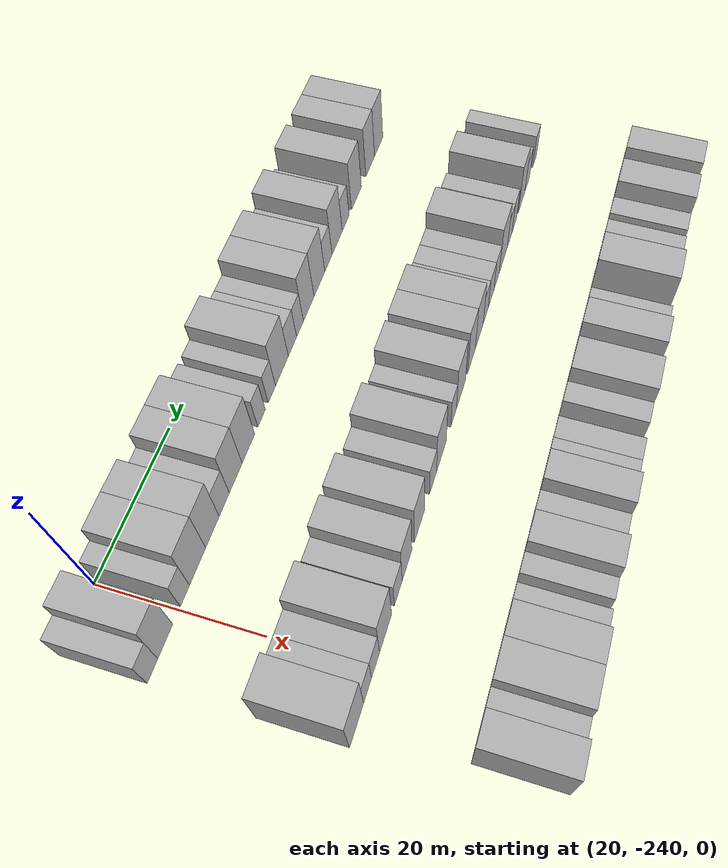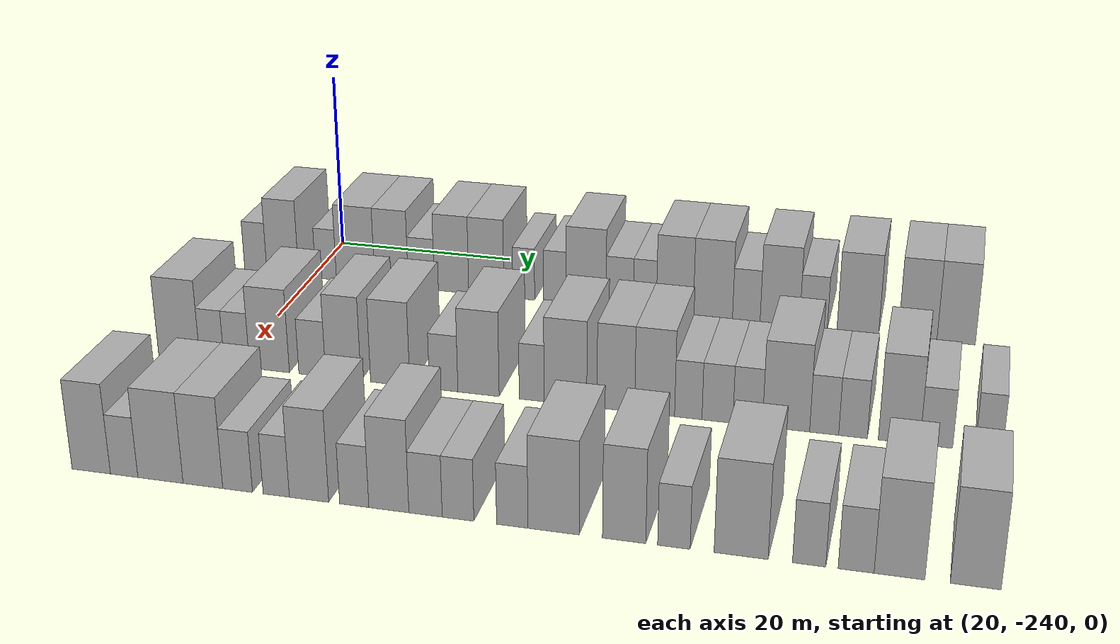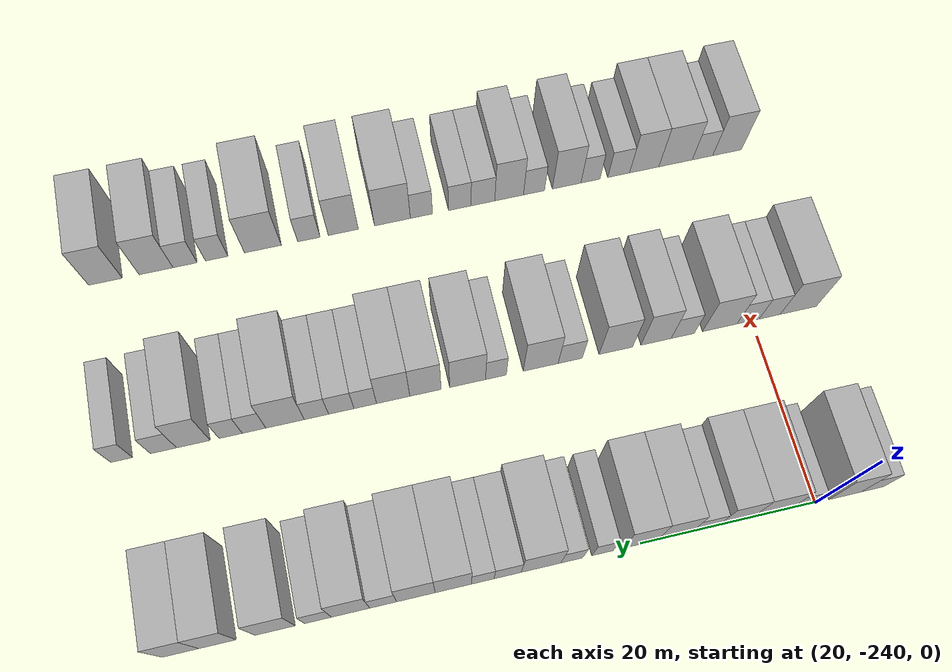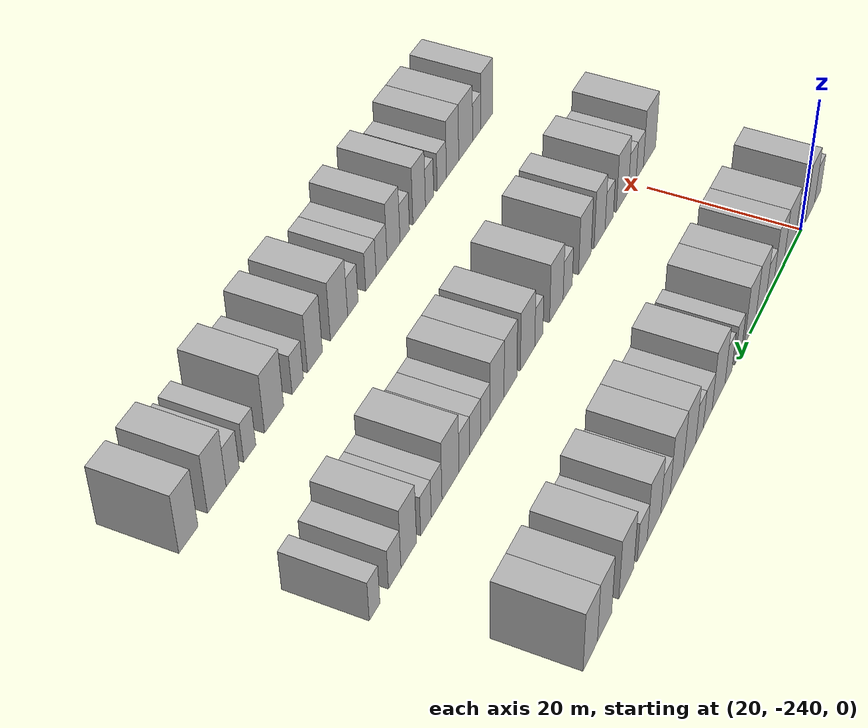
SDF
<sdf version="1.6">
 <world name="default">
  <model name="building_1">
   <static>1</static>
   <pose>25.0000 -246.6823 0 0.000000 0.000000 0.000000</pose>
   <link name="link">
    <pose>0 0 3.00 0 0 0</pose>
    <collision name="collision"><geometry><box><size>10.0000 2.6353 6.0000</size></box></geometry></collision>
    <visual name="visual">
     <cast_shadows>0</cast_shadows>
     <geometry><box><size>10.0000 2.6353 6.0000</size></box></geometry>
     <material>
      <script>
       <uri>model://HANNAS_wall/materials/scripts</uri>
       <uri>model://HANNAS_wall/materials/textures</uri>
       <name>vrc/HANNAS_wall</name>
      </script>
     </material>
    </visual>
   </link>
  </model>
  <model name="building_2">
   <static>1</static>
   <pose>25.0000 -243.4748 0 0.000000 0.000000 0.000000</pose>
   <link name="link">
    <pose>0 0 4.50 0 0 0</pose>
    <collision name="collision"><geometry><box><size>10.0000 3.7796 9.0000</size></box></geometry></collision>
    <visual name="visual">
     <cast_shadows>0</cast_shadows>
     <geometry><box><size>10.0000 3.7796 9.0000</size></box></geometry>
     <material>
      <script>
       <uri>model://HANNAS_wall/materials/scripts</uri>
       <uri>model://HANNAS_wall/materials/textures</uri>
       <name>vrc/HANNAS_wall</name>
      </script>
     </material>
    </visual>
   </link>
  </model>
  <model name="building_3">
   <static>1</static>
   <pose>25.0000 -238.3669 0 0.000000 0.000000 0.000000</pose>
   <link name="link">
    <pose>0 0 3.00 0 0 0</pose>
    <collision name="collision"><geometry><box><size>10.0000 2.4362 6.0000</size></box></geometry></collision>
    <visual name="visual">
     <cast_shadows>0</cast_shadows>
     <geometry><box><size>10.0000 2.4362 6.0000</size></box></geometry>
     <material>
      <script>
       <uri>model://HANNAS_wall/materials/scripts</uri>
       <uri>model://HANNAS_wall/materials/textures</uri>
       <name>vrc/HANNAS_wall</name>
      </script>
     </material>
    </visual>
   </link>
  </model>
  <model name="building_4">
   <static>1</static>
   <pose>25.0000 -234.9206 0 0.000000 0.000000 0.000000</pose>
   <link name="link">
    <pose>0 0 4.50 0 0 0</pose>
    <collision name="collision"><geometry><box><size>10.0000 4.4564 9.0000</size></box></geometry></collision>
    <visual name="visual">
     <cast_shadows>0</cast_shadows>
     <geometry><box><size>10.0000 4.4564 9.0000</size></box></geometry>
     <material>
      <script>
       <uri>model://HANNAS_wall/materials/scripts</uri>
       <uri>model://HANNAS_wall/materials/textures</uri>
       <name>vrc/HANNAS_wall</name>
      </script>
     </material>
    </visual>
   </link>
  </model>
  <model name="building_5">
   <static>1</static>
   <pose>25.0000 -230.7517 0 0.000000 0.000000 0.000000</pose>
   <link name="link">
    <pose>0 0 4.50 0 0 0</pose>
    <collision name="collision"><geometry><box><size>10.0000 3.8816 9.0000</size></box></geometry></collision>
    <visual name="visual">
     <cast_shadows>0</cast_shadows>
     <geometry><box><size>10.0000 3.8816 9.0000</size></box></geometry>
     <material>
      <script>
       <uri>model://HANNAS_wall/materials/scripts</uri>
       <uri>model://HANNAS_wall/materials/textures</uri>
       <name>vrc/HANNAS_wall</name>
      </script>
     </material>
    </visual>
   </link>
  </model>
  <model name="building_6">
   <static>1</static>
   <pose>25.0000 -227.3172 0 0.000000 0.000000 0.000000</pose>
   <link name="link">
    <pose>0 0 3.00 0 0 0</pose>
    <collision name="collision"><geometry><box><size>10.0000 2.9874 6.0000</size></box></geometry></collision>
    <visual name="visual">
     <cast_shadows>0</cast_shadows>
     <geometry><box><size>10.0000 2.9874 6.0000</size></box></geometry>
     <material>
      <script>
       <uri>model://HANNAS_wall/materials/scripts</uri>
       <uri>model://HANNAS_wall/materials/textures</uri>
       <name>vrc/HANNAS_wall</name>
      </script>
     </material>
    </visual>
   </link>
  </model>
  <model name="building_7">
   <static>1</static>
   <pose>25.0000 -223.8692 0 0.000000 0.000000 0.000000</pose>
   <link name="link">
    <pose>0 0 4.50 0 0 0</pose>
    <collision name="collision"><geometry><box><size>10.0000 3.9086 9.0000</size></box></geometry></collision>
    <visual name="visual">
     <cast_shadows>0</cast_shadows>
     <geometry><box><size>10.0000 3.9086 9.0000</size></box></geometry>
     <material>
      <script>
       <uri>model://HANNAS_wall/materials/scripts</uri>
       <uri>model://HANNAS_wall/materials/textures</uri>
       <name>vrc/HANNAS_wall</name>
      </script>
     </material>
    </visual>
   </link>
  </model>
  <model name="building_8">
   <static>1</static>
   <pose>25.0000 -219.9311 0 0.000000 0.000000 0.000000</pose>
   <link name="link">
    <pose>0 0 4.50 0 0 0</pose>
    <collision name="collision"><geometry><box><size>10.0000 3.9676 9.0000</size></box></geometry></collision>
    <visual name="visual">
     <cast_shadows>0</cast_shadows>
     <geometry><box><size>10.0000 3.9676 9.0000</size></box></geometry>
     <material>
      <script>
       <uri>model://HANNAS_wall/materials/scripts</uri>
       <uri>model://HANNAS_wall/materials/textures</uri>
       <name>vrc/HANNAS_wall</name>
      </script>
     </material>
    </visual>
   </link>
  </model>
  <model name="building_9">
   <static>1</static>
   <pose>25.0000 -215.7314 0 0.000000 0.000000 0.000000</pose>
   <link name="link">
    <pose>0 0 3.00 0 0 0</pose>
    <collision name="collision"><geometry><box><size>10.0000 2.4318 6.0000</size></box></geometry></collision>
    <visual name="visual">
     <cast_shadows>0</cast_shadows>
     <geometry><box><size>10.0000 2.4318 6.0000</size></box></geometry>
     <material>
      <script>
       <uri>model://HANNAS_wall/materials/scripts</uri>
       <uri>model://HANNAS_wall/materials/textures</uri>
       <name>vrc/HANNAS_wall</name>
      </script>
     </material>
    </visual>
   </link>
  </model>
  <model name="building_10">
   <static>1</static>
   <pose>25.0000 -212.2890 0 0.000000 0.000000 0.000000</pose>
   <link name="link">
    <pose>0 0 3.00 0 0 0</pose>
    <collision name="collision"><geometry><box><size>10.0000 2.4529 6.0000</size></box></geometry></collision>
    <visual name="visual">
     <cast_shadows>0</cast_shadows>
     <geometry><box><size>10.0000 2.4529 6.0000</size></box></geometry>
     <material>
      <script>
       <uri>model://HANNAS_wall/materials/scripts</uri>
       <uri>model://HANNAS_wall/materials/textures</uri>
       <name>vrc/HANNAS_wall</name>
      </script>
     </material>
    </visual>
   </link>
  </model>
  <model name="building_11">
   <static>1</static>
   <pose>25.0000 -208.8492 0 0.000000 0.000000 0.000000</pose>
   <link name="link">
    <pose>0 0 4.50 0 0 0</pose>
    <collision name="collision"><geometry><box><size>10.0000 4.4268 9.0000</size></box></geometry></collision>
    <visual name="visual">
     <cast_shadows>0</cast_shadows>
     <geometry><box><size>10.0000 4.4268 9.0000</size></box></geometry>
     <material>
      <script>
       <uri>model://HANNAS_wall/materials/scripts</uri>
       <uri>model://HANNAS_wall/materials/textures</uri>
       <name>vrc/HANNAS_wall</name>
      </script>
     </material>
    </visual>
   </link>
  </model>
  <model name="building_12">
   <static>1</static>
   <pose>25.0000 -205.1444 0 0.000000 0.000000 0.000000</pose>
   <link name="link">
    <pose>0 0 3.00 0 0 0</pose>
    <collision name="collision"><geometry><box><size>10.0000 2.9828 6.0000</size></box></geometry></collision>
    <visual name="visual">
     <cast_shadows>0</cast_shadows>
     <geometry><box><size>10.0000 2.9828 6.0000</size></box></geometry>
     <material>
      <script>
       <uri>model://HANNAS_wall/materials/scripts</uri>
       <uri>model://HANNAS_wall/materials/textures</uri>
       <name>vrc/HANNAS_wall</name>
      </script>
     </material>
    </visual>
   </link>
  </model>
  <model name="building_13">
   <static>1</static>
   <pose>25.0000 -202.4101 0 0.000000 0.000000 0.000000</pose>
   <link name="link">
    <pose>0 0 3.00 0 0 0</pose>
    <collision name="collision"><geometry><box><size>10.0000 2.4857 6.0000</size></box></geometry></collision>
    <visual name="visual">
     <cast_shadows>0</cast_shadows>
     <geometry><box><size>10.0000 2.4857 6.0000</size></box></geometry>
     <material>
      <script>
       <uri>model://HANNAS_wall/materials/scripts</uri>
       <uri>model://HANNAS_wall/materials/textures</uri>
       <name>vrc/HANNAS_wall</name>
      </script>
     </material>
    </visual>
   </link>
  </model>
  <model name="building_14">
   <static>1</static>
   <pose>25.0000 -199.1796 0 0.000000 0.000000 0.000000</pose>
   <link name="link">
    <pose>0 0 4.50 0 0 0</pose>
    <collision name="collision"><geometry><box><size>10.0000 3.9754 9.0000</size></box></geometry></collision>
    <visual name="visual">
     <cast_shadows>0</cast_shadows>
     <geometry><box><size>10.0000 3.9754 9.0000</size></box></geometry>
     <material>
      <script>
       <uri>model://HANNAS_wall/materials/scripts</uri>
       <uri>model://HANNAS_wall/materials/textures</uri>
       <name>vrc/HANNAS_wall</name>
      </script>
     </material>
    </visual>
   </link>
  </model>
  <model name="building_15">
   <static>1</static>
   <pose>25.0000 -195.0991 0 0.000000 0.000000 0.000000</pose>
   <link name="link">
    <pose>0 0 4.50 0 0 0</pose>
    <collision name="collision"><geometry><box><size>10.0000 4.1856 9.0000</size></box></geometry></collision>
    <visual name="visual">
     <cast_shadows>0</cast_shadows>
     <geometry><box><size>10.0000 4.1856 9.0000</size></box></geometry>
     <material>
      <script>
       <uri>model://HANNAS_wall/materials/scripts</uri>
       <uri>model://HANNAS_wall/materials/textures</uri>
       <name>vrc/HANNAS_wall</name>
      </script>
     </material>
    </visual>
   </link>
  </model>
  <model name="building_16">
   <static>1</static>
   <pose>25.0000 -191.5469 0 0.000000 0.000000 0.000000</pose>
   <link name="link">
    <pose>0 0 3.00 0 0 0</pose>
    <collision name="collision"><geometry><box><size>10.0000 2.9188 6.0000</size></box></geometry></collision>
    <visual name="visual">
     <cast_shadows>0</cast_shadows>
     <geometry><box><size>10.0000 2.9188 6.0000</size></box></geometry>
     <material>
      <script>
       <uri>model://HANNAS_wall/materials/scripts</uri>
       <uri>model://HANNAS_wall/materials/textures</uri>
       <name>vrc/HANNAS_wall</name>
      </script>
     </material>
    </visual>
   </link>
  </model>
  <model name="building_17">
   <static>1</static>
   <pose>25.0000 -188.0178 0 0.000000 0.000000 0.000000</pose>
   <link name="link">
    <pose>0 0 4.50 0 0 0</pose>
    <collision name="collision"><geometry><box><size>10.0000 4.1394 9.0000</size></box></geometry></collision>
    <visual name="visual">
     <cast_shadows>0</cast_shadows>
     <geometry><box><size>10.0000 4.1394 9.0000</size></box></geometry>
     <material>
      <script>
       <uri>model://HANNAS_wall/materials/scripts</uri>
       <uri>model://HANNAS_wall/materials/textures</uri>
       <name>vrc/HANNAS_wall</name>
      </script>
     </material>
    </visual>
   </link>
  </model>
  <model name="building_18">
   <static>1</static>
   <pose>25.0000 -184.5007 0 0.000000 0.000000 0.000000</pose>
   <link name="link">
    <pose>0 0 3.00 0 0 0</pose>
    <collision name="collision"><geometry><box><size>10.0000 2.8948 6.0000</size></box></geometry></collision>
    <visual name="visual">
     <cast_shadows>0</cast_shadows>
     <geometry><box><size>10.0000 2.8948 6.0000</size></box></geometry>
     <material>
      <script>
       <uri>model://HANNAS_wall/materials/scripts</uri>
       <uri>model://HANNAS_wall/materials/textures</uri>
       <name>vrc/HANNAS_wall</name>
      </script>
     </material>
    </visual>
   </link>
  </model>
  <model name="building_19">
   <static>1</static>
   <pose>25.0000 -179.9044 0 0.000000 0.000000 0.000000</pose>
   <link name="link">
    <pose>0 0 4.50 0 0 0</pose>
    <collision name="collision"><geometry><box><size>10.0000 4.2978 9.0000</size></box></geometry></collision>
    <visual name="visual">
     <cast_shadows>0</cast_shadows>
     <geometry><box><size>10.0000 4.2978 9.0000</size></box></geometry>
     <material>
      <script>
       <uri>model://HANNAS_wall/materials/scripts</uri>
       <uri>model://HANNAS_wall/materials/textures</uri>
       <name>vrc/HANNAS_wall</name>
      </script>
     </material>
    </visual>
   </link>
  </model>
  <model name="building_20">
   <static>1</static>
   <pose>25.0000 -173.7915 0 0.000000 0.000000 0.000000</pose>
   <link name="link">
    <pose>0 0 4.50 0 0 0</pose>
    <collision name="collision"><geometry><box><size>10.0000 3.9280 9.0000</size></box></geometry></collision>
    <visual name="visual">
     <cast_shadows>0</cast_shadows>
     <geometry><box><size>10.0000 3.9280 9.0000</size></box></geometry>
     <material>
      <script>
       <uri>model://HANNAS_wall/materials/scripts</uri>
       <uri>model://HANNAS_wall/materials/textures</uri>
       <name>vrc/HANNAS_wall</name>
      </script>
     </material>
    </visual>
   </link>
  </model>
  <model name="building_21">
   <static>1</static>
   <pose>25.0000 -169.8937 0 0.000000 0.000000 0.000000</pose>
   <link name="link">
    <pose>0 0 4.50 0 0 0</pose>
    <collision name="collision"><geometry><box><size>10.0000 3.8677 9.0000</size></box></geometry></collision>
    <visual name="visual">
     <cast_shadows>0</cast_shadows>
     <geometry><box><size>10.0000 3.8677 9.0000</size></box></geometry>
     <material>
      <script>
       <uri>model://HANNAS_wall/materials/scripts</uri>
       <uri>model://HANNAS_wall/materials/textures</uri>
       <name>vrc/HANNAS_wall</name>
      </script>
     </material>
    </visual>
   </link>
  </model>
  <model name="building_119">
   <static>1</static>
   <pose>47.0000 -245.7677 0 0.000000 0.000000 0.000000</pose>
   <link name="link">
    <pose>0 0 4.50 0 0 0</pose>
    <collision name="collision"><geometry><box><size>10.0000 4.4645 9.0000</size></box></geometry></collision>
    <visual name="visual">
     <cast_shadows>0</cast_shadows>
     <geometry><box><size>10.0000 4.4645 9.0000</size></box></geometry>
     <material>
      <script>
       <uri>model://HANNAS_wall/materials/scripts</uri>
       <uri>model://HANNAS_wall/materials/textures</uri>
       <name>vrc/HANNAS_wall</name>
      </script>
     </material>
    </visual>
   </link>
  </model>
  <model name="building_120">
   <static>1</static>
   <pose>47.0000 -242.2309 0 0.000000 0.000000 0.000000</pose>
   <link name="link">
    <pose>0 0 3.00 0 0 0</pose>
    <collision name="collision"><geometry><box><size>10.0000 2.6091 6.0000</size></box></geometry></collision>
    <visual name="visual">
     <cast_shadows>0</cast_shadows>
     <geometry><box><size>10.0000 2.6091 6.0000</size></box></geometry>
     <material>
      <script>
       <uri>model://HANNAS_wall/materials/scripts</uri>
       <uri>model://HANNAS_wall/materials/textures</uri>
       <name>vrc/HANNAS_wall</name>
      </script>
     </material>
    </visual>
   </link>
  </model>
  <model name="building_121">
   <static>1</static>
   <pose>47.0000 -239.5658 0 0.000000 0.000000 0.000000</pose>
   <link name="link">
    <pose>0 0 3.00 0 0 0</pose>
    <collision name="collision"><geometry><box><size>10.0000 2.7212 6.0000</size></box></geometry></collision>
    <visual name="visual">
     <cast_shadows>0</cast_shadows>
     <geometry><box><size>10.0000 2.7212 6.0000</size></box></geometry>
     <material>
      <script>
       <uri>model://HANNAS_wall/materials/scripts</uri>
       <uri>model://HANNAS_wall/materials/textures</uri>
       <name>vrc/HANNAS_wall</name>
      </script>
     </material>
    </visual>
   </link>
  </model>
  <model name="building_122">
   <static>1</static>
   <pose>47.0000 -236.0998 0 0.000000 0.000000 0.000000</pose>
   <link name="link">
    <pose>0 0 4.50 0 0 0</pose>
    <collision name="collision"><geometry><box><size>10.0000 4.2108 9.0000</size></box></geometry></collision>
    <visual name="visual">
     <cast_shadows>0</cast_shadows>
     <geometry><box><size>10.0000 4.2108 9.0000</size></box></geometry>
     <material>
      <script>
       <uri>model://HANNAS_wall/materials/scripts</uri>
       <uri>model://HANNAS_wall/materials/textures</uri>
       <name>vrc/HANNAS_wall</name>
      </script>
     </material>
    </visual>
   </link>
  </model>
  <model name="building_123">
   <static>1</static>
   <pose>47.0000 -231.5869 0 0.000000 0.000000 0.000000</pose>
   <link name="link">
    <pose>0 0 3.00 0 0 0</pose>
    <collision name="collision"><geometry><box><size>10.0000 2.8149 6.0000</size></box></geometry></collision>
    <visual name="visual">
     <cast_shadows>0</cast_shadows>
     <geometry><box><size>10.0000 2.8149 6.0000</size></box></geometry>
     <material>
      <script>
       <uri>model://HANNAS_wall/materials/scripts</uri>
       <uri>model://HANNAS_wall/materials/textures</uri>
       <name>vrc/HANNAS_wall</name>
      </script>
     </material>
    </visual>
   </link>
  </model>
  <model name="building_124">
   <static>1</static>
   <pose>47.0000 -228.3459 0 0.000000 0.000000 0.000000</pose>
   <link name="link">
    <pose>0 0 4.50 0 0 0</pose>
    <collision name="collision"><geometry><box><size>10.0000 3.6670 9.0000</size></box></geometry></collision>
    <visual name="visual">
     <cast_shadows>0</cast_shadows>
     <geometry><box><size>10.0000 3.6670 9.0000</size></box></geometry>
     <material>
      <script>
       <uri>model://HANNAS_wall/materials/scripts</uri>
       <uri>model://HANNAS_wall/materials/textures</uri>
       <name>vrc/HANNAS_wall</name>
      </script>
     </material>
    </visual>
   </link>
  </model>
  <model name="building_125">
   <static>1</static>
   <pose>47.0000 -223.4941 0 0.000000 0.000000 0.000000</pose>
   <link name="link">
    <pose>0 0 4.50 0 0 0</pose>
    <collision name="collision"><geometry><box><size>10.0000 4.0366 9.0000</size></box></geometry></collision>
    <visual name="visual">
     <cast_shadows>0</cast_shadows>
     <geometry><box><size>10.0000 4.0366 9.0000</size></box></geometry>
     <material>
      <script>
       <uri>model://HANNAS_wall/materials/scripts</uri>
       <uri>model://HANNAS_wall/materials/textures</uri>
       <name>vrc/HANNAS_wall</name>
      </script>
     </material>
    </visual>
   </link>
  </model>
  <model name="building_126">
   <static>1</static>
   <pose>47.0000 -218.0312 0 0.000000 0.000000 0.000000</pose>
   <link name="link">
    <pose>0 0 3.00 0 0 0</pose>
    <collision name="collision"><geometry><box><size>10.0000 2.8892 6.0000</size></box></geometry></collision>
    <visual name="visual">
     <cast_shadows>0</cast_shadows>
     <geometry><box><size>10.0000 2.8892 6.0000</size></box></geometry>
     <material>
      <script>
       <uri>model://HANNAS_wall/materials/scripts</uri>
       <uri>model://HANNAS_wall/materials/textures</uri>
       <name>vrc/HANNAS_wall</name>
      </script>
     </material>
    </visual>
   </link>
  </model>
  <model name="building_127">
   <static>1</static>
   <pose>47.0000 -214.5091 0 0.000000 0.000000 0.000000</pose>
   <link name="link">
    <pose>0 0 4.50 0 0 0</pose>
    <collision name="collision"><geometry><box><size>10.0000 4.1549 9.0000</size></box></geometry></collision>
    <visual name="visual">
     <cast_shadows>0</cast_shadows>
     <geometry><box><size>10.0000 4.1549 9.0000</size></box></geometry>
     <material>
      <script>
       <uri>model://HANNAS_wall/materials/scripts</uri>
       <uri>model://HANNAS_wall/materials/textures</uri>
       <name>vrc/HANNAS_wall</name>
      </script>
     </material>
    </visual>
   </link>
  </model>
  <model name="building_128">
   <static>1</static>
   <pose>47.0000 -209.1983 0 0.000000 0.000000 0.000000</pose>
   <link name="link">
    <pose>0 0 3.00 0 0 0</pose>
    <collision name="collision"><geometry><box><size>10.0000 2.4667 6.0000</size></box></geometry></collision>
    <visual name="visual">
     <cast_shadows>0</cast_shadows>
     <geometry><box><size>10.0000 2.4667 6.0000</size></box></geometry>
     <material>
      <script>
       <uri>model://HANNAS_wall/materials/scripts</uri>
       <uri>model://HANNAS_wall/materials/textures</uri>
       <name>vrc/HANNAS_wall</name>
      </script>
     </material>
    </visual>
   </link>
  </model>
  <model name="building_129">
   <static>1</static>
   <pose>47.0000 -205.8632 0 0.000000 0.000000 0.000000</pose>
   <link name="link">
    <pose>0 0 4.50 0 0 0</pose>
    <collision name="collision"><geometry><box><size>10.0000 4.2034 9.0000</size></box></geometry></collision>
    <visual name="visual">
     <cast_shadows>0</cast_shadows>
     <geometry><box><size>10.0000 4.2034 9.0000</size></box></geometry>
     <material>
      <script>
       <uri>model://HANNAS_wall/materials/scripts</uri>
       <uri>model://HANNAS_wall/materials/textures</uri>
       <name>vrc/HANNAS_wall</name>
      </script>
     </material>
    </visual>
   </link>
  </model>
  <model name="building_130">
   <static>1</static>
   <pose>47.0000 -200.9301 0 0.000000 0.000000 0.000000</pose>
   <link name="link">
    <pose>0 0 4.50 0 0 0</pose>
    <collision name="collision"><geometry><box><size>10.0000 3.6627 9.0000</size></box></geometry></collision>
    <visual name="visual">
     <cast_shadows>0</cast_shadows>
     <geometry><box><size>10.0000 3.6627 9.0000</size></box></geometry>
     <material>
      <script>
       <uri>model://HANNAS_wall/materials/scripts</uri>
       <uri>model://HANNAS_wall/materials/textures</uri>
       <name>vrc/HANNAS_wall</name>
      </script>
     </material>
    </visual>
   </link>
  </model>
  <model name="building_131">
   <static>1</static>
   <pose>47.0000 -197.1742 0 0.000000 0.000000 0.000000</pose>
   <link name="link">
    <pose>0 0 4.50 0 0 0</pose>
    <collision name="collision"><geometry><box><size>10.0000 3.8491 9.0000</size></box></geometry></collision>
    <visual name="visual">
     <cast_shadows>0</cast_shadows>
     <geometry><box><size>10.0000 3.8491 9.0000</size></box></geometry>
     <material>
      <script>
       <uri>model://HANNAS_wall/materials/scripts</uri>
       <uri>model://HANNAS_wall/materials/textures</uri>
       <name>vrc/HANNAS_wall</name>
      </script>
     </material>
    </visual>
   </link>
  </model>
  <model name="building_132">
   <static>1</static>
   <pose>47.0000 -193.9425 0 0.000000 0.000000 0.000000</pose>
   <link name="link">
    <pose>0 0 3.00 0 0 0</pose>
    <collision name="collision"><geometry><box><size>10.0000 2.6144 6.0000</size></box></geometry></collision>
    <visual name="visual">
     <cast_shadows>0</cast_shadows>
     <geometry><box><size>10.0000 2.6144 6.0000</size></box></geometry>
     <material>
      <script>
       <uri>model://HANNAS_wall/materials/scripts</uri>
       <uri>model://HANNAS_wall/materials/textures</uri>
       <name>vrc/HANNAS_wall</name>
      </script>
     </material>
    </visual>
   </link>
  </model>
  <model name="building_133">
   <static>1</static>
   <pose>47.0000 -191.1678 0 0.000000 0.000000 0.000000</pose>
   <link name="link">
    <pose>0 0 3.00 0 0 0</pose>
    <collision name="collision"><geometry><box><size>10.0000 2.9351 6.0000</size></box></geometry></collision>
    <visual name="visual">
     <cast_shadows>0</cast_shadows>
     <geometry><box><size>10.0000 2.9351 6.0000</size></box></geometry>
     <material>
      <script>
       <uri>model://HANNAS_wall/materials/scripts</uri>
       <uri>model://HANNAS_wall/materials/textures</uri>
       <name>vrc/HANNAS_wall</name>
      </script>
     </material>
    </visual>
   </link>
  </model>
  <model name="building_134">
   <static>1</static>
   <pose>47.0000 -188.3075 0 0.000000 0.000000 0.000000</pose>
   <link name="link">
    <pose>0 0 3.00 0 0 0</pose>
    <collision name="collision"><geometry><box><size>10.0000 2.7853 6.0000</size></box></geometry></collision>
    <visual name="visual">
     <cast_shadows>0</cast_shadows>
     <geometry><box><size>10.0000 2.7853 6.0000</size></box></geometry>
     <material>
      <script>
       <uri>model://HANNAS_wall/materials/scripts</uri>
       <uri>model://HANNAS_wall/materials/textures</uri>
       <name>vrc/HANNAS_wall</name>
      </script>
     </material>
    </visual>
   </link>
  </model>
  <model name="building_135">
   <static>1</static>
   <pose>47.0000 -184.7114 0 0.000000 0.000000 0.000000</pose>
   <link name="link">
    <pose>0 0 4.50 0 0 0</pose>
    <collision name="collision"><geometry><box><size>10.0000 4.4069 9.0000</size></box></geometry></collision>
    <visual name="visual">
     <cast_shadows>0</cast_shadows>
     <geometry><box><size>10.0000 4.4069 9.0000</size></box></geometry>
     <material>
      <script>
       <uri>model://HANNAS_wall/materials/scripts</uri>
       <uri>model://HANNAS_wall/materials/textures</uri>
       <name>vrc/HANNAS_wall</name>
      </script>
     </material>
    </visual>
   </link>
  </model>
  <model name="building_136">
   <static>1</static>
   <pose>47.0000 -181.1659 0 0.000000 0.000000 0.000000</pose>
   <link name="link">
    <pose>0 0 3.00 0 0 0</pose>
    <collision name="collision"><geometry><box><size>10.0000 2.6843 6.0000</size></box></geometry></collision>
    <visual name="visual">
     <cast_shadows>0</cast_shadows>
     <geometry><box><size>10.0000 2.6843 6.0000</size></box></geometry>
     <material>
      <script>
       <uri>model://HANNAS_wall/materials/scripts</uri>
       <uri>model://HANNAS_wall/materials/textures</uri>
       <name>vrc/HANNAS_wall</name>
      </script>
     </material>
    </visual>
   </link>
  </model>
  <model name="building_137">
   <static>1</static>
   <pose>47.0000 -178.5065 0 0.000000 0.000000 0.000000</pose>
   <link name="link">
    <pose>0 0 3.00 0 0 0</pose>
    <collision name="collision"><geometry><box><size>10.0000 2.6346 6.0000</size></box></geometry></collision>
    <visual name="visual">
     <cast_shadows>0</cast_shadows>
     <geometry><box><size>10.0000 2.6346 6.0000</size></box></geometry>
     <material>
      <script>
       <uri>model://HANNAS_wall/materials/scripts</uri>
       <uri>model://HANNAS_wall/materials/textures</uri>
       <name>vrc/HANNAS_wall</name>
      </script>
     </material>
    </visual>
   </link>
  </model>
  <model name="building_138">
   <static>1</static>
   <pose>47.0000 -174.2958 0 0.000000 0.000000 0.000000</pose>
   <link name="link">
    <pose>0 0 4.50 0 0 0</pose>
    <collision name="collision"><geometry><box><size>10.0000 3.7867 9.0000</size></box></geometry></collision>
    <visual name="visual">
     <cast_shadows>0</cast_shadows>
     <geometry><box><size>10.0000 3.7867 9.0000</size></box></geometry>
     <material>
      <script>
       <uri>model://HANNAS_wall/materials/scripts</uri>
       <uri>model://HANNAS_wall/materials/textures</uri>
       <name>vrc/HANNAS_wall</name>
      </script>
     </material>
    </visual>
   </link>
  </model>
  <model name="building_139">
   <static>1</static>
   <pose>47.0000 -170.9310 0 0.000000 0.000000 0.000000</pose>
   <link name="link">
    <pose>0 0 3.00 0 0 0</pose>
    <collision name="collision"><geometry><box><size>10.0000 2.9429 6.0000</size></box></geometry></collision>
    <visual name="visual">
     <cast_shadows>0</cast_shadows>
     <geometry><box><size>10.0000 2.9429 6.0000</size></box></geometry>
     <material>
      <script>
       <uri>model://HANNAS_wall/materials/scripts</uri>
       <uri>model://HANNAS_wall/materials/textures</uri>
       <name>vrc/HANNAS_wall</name>
      </script>
     </material>
    </visual>
   </link>
  </model>
  <model name="building_140">
   <static>1</static>
   <pose>47.0000 -166.2429 0 0.000000 0.000000 0.000000</pose>
   <link name="link">
    <pose>0 0 3.00 0 0 0</pose>
    <collision name="collision"><geometry><box><size>10.0000 2.4333 6.0000</size></box></geometry></collision>
    <visual name="visual">
     <cast_shadows>0</cast_shadows>
     <geometry><box><size>10.0000 2.4333 6.0000</size></box></geometry>
     <material>
      <script>
       <uri>model://HANNAS_wall/materials/scripts</uri>
       <uri>model://HANNAS_wall/materials/textures</uri>
       <name>vrc/HANNAS_wall</name>
      </script>
     </material>
    </visual>
   </link>
  </model>
  <model name="building_250">
   <static>1</static>
   <pose>69.0000 -244.1309 0 0.000000 0.000000 0.000000</pose>
   <link name="link">
    <pose>0 0 4.50 0 0 0</pose>
    <collision name="collision"><geometry><box><size>10.0000 3.7382 9.0000</size></box></geometry></collision>
    <visual name="visual">
     <cast_shadows>0</cast_shadows>
     <geometry><box><size>10.0000 3.7382 9.0000</size></box></geometry>
     <material>
      <script>
       <uri>model://HANNAS_wall/materials/scripts</uri>
       <uri>model://HANNAS_wall/materials/textures</uri>
       <name>vrc/HANNAS_wall</name>
      </script>
     </material>
    </visual>
   </link>
  </model>
  <model name="building_251">
   <static>1</static>
   <pose>69.0000 -240.9376 0 0.000000 0.000000 0.000000</pose>
   <link name="link">
    <pose>0 0 3.00 0 0 0</pose>
    <collision name="collision"><geometry><box><size>10.0000 2.6484 6.0000</size></box></geometry></collision>
    <visual name="visual">
     <cast_shadows>0</cast_shadows>
     <geometry><box><size>10.0000 2.6484 6.0000</size></box></geometry>
     <material>
      <script>
       <uri>model://HANNAS_wall/materials/scripts</uri>
       <uri>model://HANNAS_wall/materials/textures</uri>
       <name>vrc/HANNAS_wall</name>
      </script>
     </material>
    </visual>
   </link>
  </model>
  <model name="building_252">
   <static>1</static>
   <pose>69.0000 -237.4472 0 0.000000 0.000000 0.000000</pose>
   <link name="link">
    <pose>0 0 4.50 0 0 0</pose>
    <collision name="collision"><geometry><box><size>10.0000 4.3323 9.0000</size></box></geometry></collision>
    <visual name="visual">
     <cast_shadows>0</cast_shadows>
     <geometry><box><size>10.0000 4.3323 9.0000</size></box></geometry>
     <material>
      <script>
       <uri>model://HANNAS_wall/materials/scripts</uri>
       <uri>model://HANNAS_wall/materials/textures</uri>
       <name>vrc/HANNAS_wall</name>
      </script>
     </material>
    </visual>
   </link>
  </model>
  <model name="building_253">
   <static>1</static>
   <pose>69.0000 -233.4022 0 0.000000 0.000000 0.000000</pose>
   <link name="link">
    <pose>0 0 4.50 0 0 0</pose>
    <collision name="collision"><geometry><box><size>10.0000 3.7578 9.0000</size></box></geometry></collision>
    <visual name="visual">
     <cast_shadows>0</cast_shadows>
     <geometry><box><size>10.0000 3.7578 9.0000</size></box></geometry>
     <material>
      <script>
       <uri>model://HANNAS_wall/materials/scripts</uri>
       <uri>model://HANNAS_wall/materials/textures</uri>
       <name>vrc/HANNAS_wall</name>
      </script>
     </material>
    </visual>
   </link>
  </model>
  <model name="building_254">
   <static>1</static>
   <pose>69.0000 -230.1285 0 0.000000 0.000000 0.000000</pose>
   <link name="link">
    <pose>0 0 3.00 0 0 0</pose>
    <collision name="collision"><geometry><box><size>10.0000 2.7895 6.0000</size></box></geometry></collision>
    <visual name="visual">
     <cast_shadows>0</cast_shadows>
     <geometry><box><size>10.0000 2.7895 6.0000</size></box></geometry>
     <material>
      <script>
       <uri>model://HANNAS_wall/materials/scripts</uri>
       <uri>model://HANNAS_wall/materials/textures</uri>
       <name>vrc/HANNAS_wall</name>
      </script>
     </material>
    </visual>
   </link>
  </model>
  <model name="building_255">
   <static>1</static>
   <pose>69.0000 -226.5180 0 0.000000 0.000000 0.000000</pose>
   <link name="link">
    <pose>0 0 3.00 0 0 0</pose>
    <collision name="collision"><geometry><box><size>10.0000 2.4316 6.0000</size></box></geometry></collision>
    <visual name="visual">
     <cast_shadows>0</cast_shadows>
     <geometry><box><size>10.0000 2.4316 6.0000</size></box></geometry>
     <material>
      <script>
       <uri>model://HANNAS_wall/materials/scripts</uri>
       <uri>model://HANNAS_wall/materials/textures</uri>
       <name>vrc/HANNAS_wall</name>
      </script>
     </material>
    </visual>
   </link>
  </model>
  <model name="building_256">
   <static>1</static>
   <pose>69.0000 -223.4877 0 0.000000 0.000000 0.000000</pose>
   <link name="link">
    <pose>0 0 4.50 0 0 0</pose>
    <collision name="collision"><geometry><box><size>10.0000 3.6289 9.0000</size></box></geometry></collision>
    <visual name="visual">
     <cast_shadows>0</cast_shadows>
     <geometry><box><size>10.0000 3.6289 9.0000</size></box></geometry>
     <material>
      <script>
       <uri>model://HANNAS_wall/materials/scripts</uri>
       <uri>model://HANNAS_wall/materials/textures</uri>
       <name>vrc/HANNAS_wall</name>
      </script>
     </material>
    </visual>
   </link>
  </model>
  <model name="building_257">
   <static>1</static>
   <pose>69.0000 -219.3445 0 0.000000 0.000000 0.000000</pose>
   <link name="link">
    <pose>0 0 3.00 0 0 0</pose>
    <collision name="collision"><geometry><box><size>10.0000 2.6574 6.0000</size></box></geometry></collision>
    <visual name="visual">
     <cast_shadows>0</cast_shadows>
     <geometry><box><size>10.0000 2.6574 6.0000</size></box></geometry>
     <material>
      <script>
       <uri>model://HANNAS_wall/materials/scripts</uri>
       <uri>model://HANNAS_wall/materials/textures</uri>
       <name>vrc/HANNAS_wall</name>
      </script>
     </material>
    </visual>
   </link>
  </model>
  <model name="building_258">
   <static>1</static>
   <pose>69.0000 -216.2067 0 0.000000 0.000000 0.000000</pose>
   <link name="link">
    <pose>0 0 4.50 0 0 0</pose>
    <collision name="collision"><geometry><box><size>10.0000 3.6182 9.0000</size></box></geometry></collision>
    <visual name="visual">
     <cast_shadows>0</cast_shadows>
     <geometry><box><size>10.0000 3.6182 9.0000</size></box></geometry>
     <material>
      <script>
       <uri>model://HANNAS_wall/materials/scripts</uri>
       <uri>model://HANNAS_wall/materials/textures</uri>
       <name>vrc/HANNAS_wall</name>
      </script>
     </material>
    </visual>
   </link>
  </model>
  <model name="building_259">
   <static>1</static>
   <pose>69.0000 -212.9076 0 0.000000 0.000000 0.000000</pose>
   <link name="link">
    <pose>0 0 3.00 0 0 0</pose>
    <collision name="collision"><geometry><box><size>10.0000 2.9801 6.0000</size></box></geometry></collision>
    <visual name="visual">
     <cast_shadows>0</cast_shadows>
     <geometry><box><size>10.0000 2.9801 6.0000</size></box></geometry>
     <material>
      <script>
       <uri>model://HANNAS_wall/materials/scripts</uri>
       <uri>model://HANNAS_wall/materials/textures</uri>
       <name>vrc/HANNAS_wall</name>
      </script>
     </material>
    </visual>
   </link>
  </model>
  <model name="building_260">
   <static>1</static>
   <pose>69.0000 -210.0120 0 0.000000 0.000000 0.000000</pose>
   <link name="link">
    <pose>0 0 3.00 0 0 0</pose>
    <collision name="collision"><geometry><box><size>10.0000 2.8113 6.0000</size></box></geometry></collision>
    <visual name="visual">
     <cast_shadows>0</cast_shadows>
     <geometry><box><size>10.0000 2.8113 6.0000</size></box></geometry>
     <material>
      <script>
       <uri>model://HANNAS_wall/materials/scripts</uri>
       <uri>model://HANNAS_wall/materials/textures</uri>
       <name>vrc/HANNAS_wall</name>
      </script>
     </material>
    </visual>
   </link>
  </model>
  <model name="building_261">
   <static>1</static>
   <pose>69.0000 -205.2342 0 0.000000 0.000000 0.000000</pose>
   <link name="link">
    <pose>0 0 3.00 0 0 0</pose>
    <collision name="collision"><geometry><box><size>10.0000 2.7444 6.0000</size></box></geometry></collision>
    <visual name="visual">
     <cast_shadows>0</cast_shadows>
     <geometry><box><size>10.0000 2.7444 6.0000</size></box></geometry>
     <material>
      <script>
       <uri>model://HANNAS_wall/materials/scripts</uri>
       <uri>model://HANNAS_wall/materials/textures</uri>
       <name>vrc/HANNAS_wall</name>
      </script>
     </material>
    </visual>
   </link>
  </model>
  <model name="building_262">
   <static>1</static>
   <pose>69.0000 -201.6439 0 0.000000 0.000000 0.000000</pose>
   <link name="link">
    <pose>0 0 4.50 0 0 0</pose>
    <collision name="collision"><geometry><box><size>10.0000 4.4362 9.0000</size></box></geometry></collision>
    <visual name="visual">
     <cast_shadows>0</cast_shadows>
     <geometry><box><size>10.0000 4.4362 9.0000</size></box></geometry>
     <material>
      <script>
       <uri>model://HANNAS_wall/materials/scripts</uri>
       <uri>model://HANNAS_wall/materials/textures</uri>
       <name>vrc/HANNAS_wall</name>
      </script>
     </material>
    </visual>
   </link>
  </model>
  <model name="building_263">
   <static>1</static>
   <pose>69.0000 -195.5803 0 0.000000 0.000000 0.000000</pose>
   <link name="link">
    <pose>0 0 4.50 0 0 0</pose>
    <collision name="collision"><geometry><box><size>10.0000 3.6910 9.0000</size></box></geometry></collision>
    <visual name="visual">
     <cast_shadows>0</cast_shadows>
     <geometry><box><size>10.0000 3.6910 9.0000</size></box></geometry>
     <material>
      <script>
       <uri>model://HANNAS_wall/materials/scripts</uri>
       <uri>model://HANNAS_wall/materials/textures</uri>
       <name>vrc/HANNAS_wall</name>
      </script>
     </material>
    </visual>
   </link>
  </model>
  <model name="building_264">
   <static>1</static>
   <pose>69.0000 -191.3663 0 0.000000 0.000000 0.000000</pose>
   <link name="link">
    <pose>0 0 3.00 0 0 0</pose>
    <collision name="collision"><geometry><box><size>10.0000 2.7369 6.0000</size></box></geometry></collision>
    <visual name="visual">
     <cast_shadows>0</cast_shadows>
     <geometry><box><size>10.0000 2.7369 6.0000</size></box></geometry>
     <material>
      <script>
       <uri>model://HANNAS_wall/materials/scripts</uri>
       <uri>model://HANNAS_wall/materials/textures</uri>
       <name>vrc/HANNAS_wall</name>
      </script>
     </material>
    </visual>
   </link>
  </model>
  <model name="building_265">
   <static>1</static>
   <pose>69.0000 -185.7615 0 0.000000 0.000000 0.000000</pose>
   <link name="link">
    <pose>0 0 4.50 0 0 0</pose>
    <collision name="collision"><geometry><box><size>10.0000 4.4728 9.0000</size></box></geometry></collision>
    <visual name="visual">
     <cast_shadows>0</cast_shadows>
     <geometry><box><size>10.0000 4.4728 9.0000</size></box></geometry>
     <material>
      <script>
       <uri>model://HANNAS_wall/materials/scripts</uri>
       <uri>model://HANNAS_wall/materials/textures</uri>
       <name>vrc/HANNAS_wall</name>
      </script>
     </material>
    </visual>
   </link>
  </model>
  <model name="building_266">
   <static>1</static>
   <pose>69.0000 -180.1710 0 0.000000 0.000000 0.000000</pose>
   <link name="link">
    <pose>0 0 3.00 0 0 0</pose>
    <collision name="collision"><geometry><box><size>10.0000 2.7082 6.0000</size></box></geometry></collision>
    <visual name="visual">
     <cast_shadows>0</cast_shadows>
     <geometry><box><size>10.0000 2.7082 6.0000</size></box></geometry>
     <material>
      <script>
       <uri>model://HANNAS_wall/materials/scripts</uri>
       <uri>model://HANNAS_wall/materials/textures</uri>
       <name>vrc/HANNAS_wall</name>
      </script>
     </material>
    </visual>
   </link>
  </model>
  <model name="building_267">
   <static>1</static>
   <pose>69.0000 -176.3705 0 0.000000 0.000000 0.000000</pose>
   <link name="link">
    <pose>0 0 3.00 0 0 0</pose>
    <collision name="collision"><geometry><box><size>10.0000 2.8929 6.0000</size></box></geometry></collision>
    <visual name="visual">
     <cast_shadows>0</cast_shadows>
     <geometry><box><size>10.0000 2.8929 6.0000</size></box></geometry>
     <material>
      <script>
       <uri>model://HANNAS_wall/materials/scripts</uri>
       <uri>model://HANNAS_wall/materials/textures</uri>
       <name>vrc/HANNAS_wall</name>
      </script>
     </material>
    </visual>
   </link>
  </model>
  <model name="building_268">
   <static>1</static>
   <pose>69.0000 -172.8992 0 0.000000 0.000000 0.000000</pose>
   <link name="link">
    <pose>0 0 4.50 0 0 0</pose>
    <collision name="collision"><geometry><box><size>10.0000 4.0497 9.0000</size></box></geometry></collision>
    <visual name="visual">
     <cast_shadows>0</cast_shadows>
     <geometry><box><size>10.0000 4.0497 9.0000</size></box></geometry>
     <material>
      <script>
       <uri>model://HANNAS_wall/materials/scripts</uri>
       <uri>model://HANNAS_wall/materials/textures</uri>
       <name>vrc/HANNAS_wall</name>
      </script>
     </material>
    </visual>
   </link>
  </model>
  <model name="building_269">
   <static>1</static>
   <pose>69.0000 -166.8790 0 0.000000 0.000000 0.000000</pose>
   <link name="link">
    <pose>0 0 4.50 0 0 0</pose>
    <collision name="collision"><geometry><box><size>10.0000 3.9907 9.0000</size></box></geometry></collision>
    <visual name="visual">
     <cast_shadows>0</cast_shadows>
     <geometry><box><size>10.0000 3.9907 9.0000</size></box></geometry>
     <material>
      <script>
       <uri>model://HANNAS_wall/materials/scripts</uri>
       <uri>model://HANNAS_wall/materials/textures</uri>
       <name>vrc/HANNAS_wall</name>
      </script>
     </material>
    </visual>
   </link>
  </model>
 </world>
</sdf>
